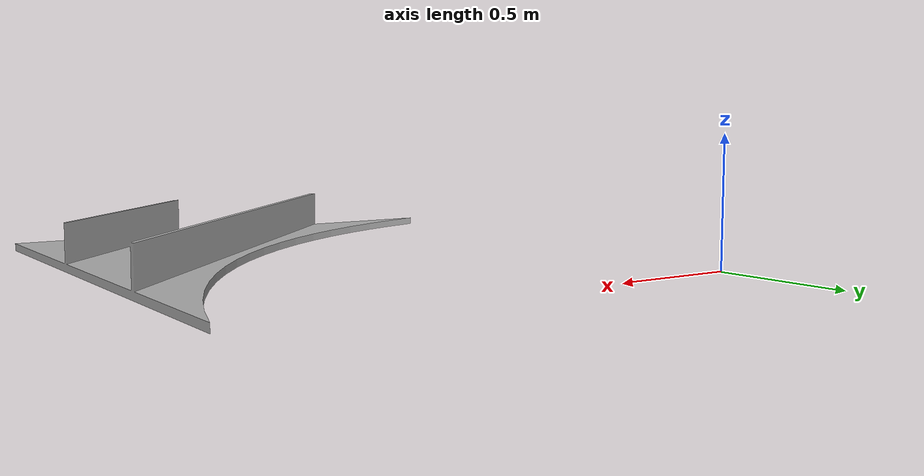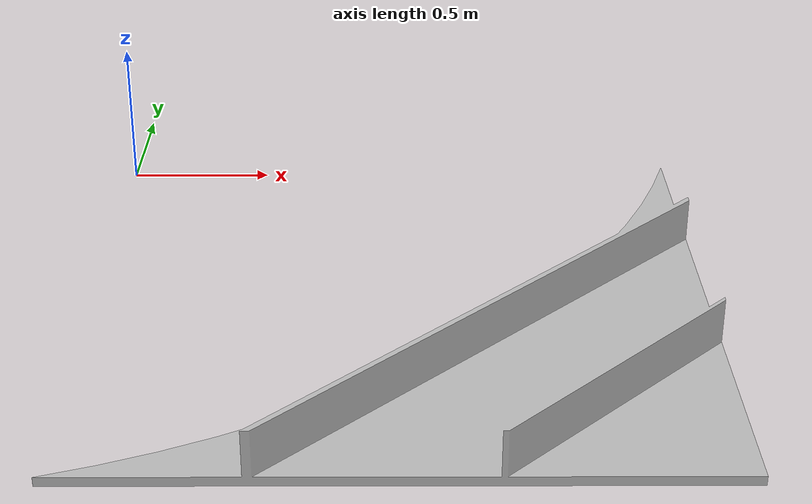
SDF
<?xml version='1.0'?>
<sdf version='1.0'>
  <model name="kogumi_part">
	<static>true</static>
	<link name='kogumi_part'>
            <pose>0 0 0.00 1.571 0 0</pose>

            <collision name='collision'>
              <geometry>
                <mesh><uri>model://kogumi_part/mesh/kogumi_part_scale.stl</uri></mesh>
              </geometry>
		          <surface>
                <friction>
                  <ode>
                    <mu>2</mu>
                    <mu2>2</mu2>
                  </ode>
                </friction>
              </surface>
            </collision>
            <inertial>
              <mass>1</mass>
              <inertia>
                <ixx>1.0</ixx>
                <ixy>0.0</ixy>
                <ixz>0.0</ixz>
                <iyy>1.0</iyy>
                <iyz>0.0</iyz>
                <izz>1.0</izz>
              </inertia>
            </inertial>

            <visual name='visual'>
              <geometry>
                <mesh><uri>model://kogumi_part/mesh/kogumi_part_scale.stl</uri></mesh>
              </geometry>
            </visual>
          </link>
  </model>
</sdf>
